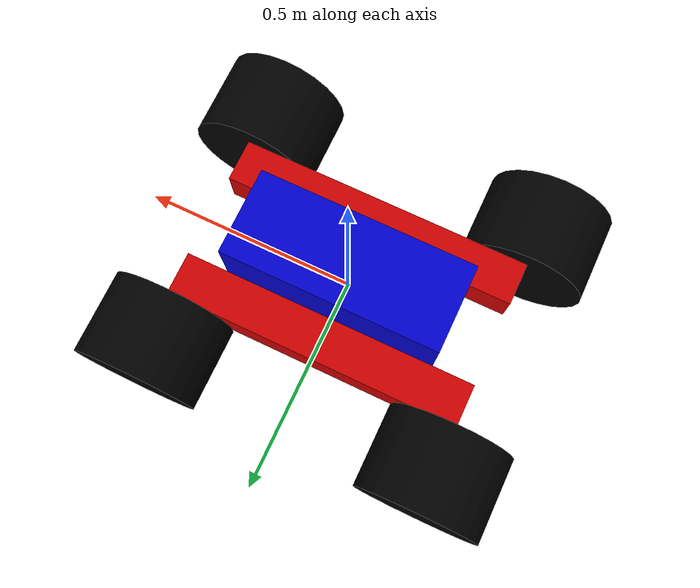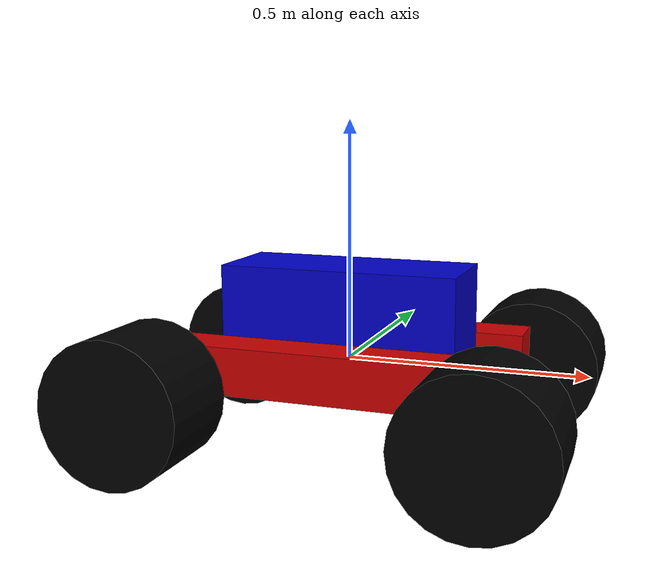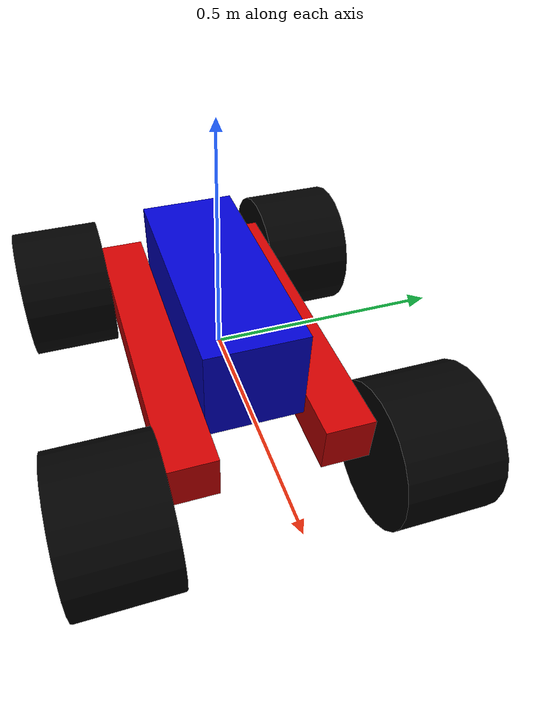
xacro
<?xml version="1.0"?>
<robot name="test"
   xmlns:xacro="http://www.ros.org/wiki/xacro">

   <xacro:include filename="$(find rover_config)/urdf/wheel.urdf.xacro" />

   <!-- Defining the colors used in this robot -->

   <material name="Black">
      <color rgba="0.0 0.0 0.0 1.0"/>
   </material>

   <material name="Red">
      <color rgba="0.8 0.0 0.0 1.0"/>
   </material>

   <material name="White">
      <color rgba="1.0 1.0 1.0 1.0"/>
   </material>

   <material name="Blue">
      <color rgba="0.0 0.0 0.8 1.0"/>
   </material>

   <!-- Property list -->
   <!-- All units in m-kg-s-radians unit system -->

   <xacro:property name="M_PI" value="3.1415926535897931" />
   <xacro:property name="M_PI_2" value="1.570796327" />
   <xacro:property name="DEG_TO_RAD" value="0.017453293" />

   <!-- Main body length height width -->

   <xacro:property name="base_height" value="0.2" />
   <!-- in meter -->
   <xacro:property name="base_width" value="0.2" />
   <!-- in meter -->
   <xacro:property name="base_lenght" value="0.5" />
   <!-- in meter -->
   <xacro:property name="base_mass" value="20.0" />
   <!-- in kg -->

   <xacro:property name="rocker_height" value="0.1" />
   <!-- in meter -->
   <xacro:property name="rocker_width" value="0.1" />
   <!-- in meter -->
   <xacro:property name="rocker_lenght" value="0.7" />
   <!-- in meter -->
   <xacro:property name="rocker_mass" value="2.0" />
   <!-- in kg -->

   <!-- Macro for calculating inertia of cylinder -->

   <xacro:macro name="cylinder_inertia" params="m r h">
      <inertia ixx="${ m * ( 3 * r*r + h*h ) / 12}" ixy="0" ixz="0" iyy="${ m * ( 3 * r*r + h*h ) / 12}" iyz="0" izz="${ m * r / 2}" />
   </xacro:macro>

   <!-- Macro for calculating inertia of a box -->

   <xacro:macro name="box_inertia" params="m x y z">
      <inertia ixx="${0.0833333 * m * (y*y + z*z)}" ixy="0.0" ixz="0.0" iyy="${0.0833333 * m * (x*x + z*z)}" iyz="0.0" izz="${0.0833333 * m * (x*x + y*y)}" />
   </xacro:macro>

   <!-- World link -->
   <!-- base_footprint is a fictious link(frame) that is on the ground right below base_link origin -->
   <!-- It is necessary as gazebo does not support inertia for the root link -->
   <!-- Do not call it world as it is reserved for robot that must be fixed to the world -->

   <link name="base_link">
   </link>

   <gazebo reference="base_link">
      <turnGravityOff>false</turnGravityOff>
   </gazebo>

   <joint name="glue_robot_to_world" type="fixed">
      <origin xyz="0 0 0.1" rpy="0 0 0" />
      <parent link="base_link" />
      <child link="chassis" />
   </joint>

   <!-- Base link -->
   <!-- Actual body/chassis of the robot -->

   <link name="chassis">
      <inertial>
         <mass value="${base_mass}" />
         <!-- the3x3 rotational inertia matrix -->
         <box_inertia m="${base_mass}" x="${base_lenght}" y="${base_width}" z="${base_height}" />
         <origin xyz="0 0 0" />
      </inertial>
      <visual>
         <origin xyz="0 0 0" rpy="0 0 0" />
         <geometry>
            <box size="${base_lenght} ${base_width} ${base_height}" />
         </geometry>
         <material name="Blue" />
      </visual>
      <collision>
         <origin xyz="0 0 0" rpy="0 0 0" />
         <geometry>
            <box size="${base_lenght} ${base_width} ${base_height}" />
         </geometry>
      </collision>
   </link>

   <gazebo reference="chassis">
      <material>Gazebo/White</material>
      <turnGravityOff>false</turnGravityOff>
   </gazebo>

   <xacro:macro name="rocker" params="side parent translateX translateY translateZ flipY">
      <link name="${side}_rocker">
         <visual>
            <origin xyz="0 ${flipY * rocker_width / 2} 0" rpy="0 0 0"/>
            <geometry>
               <box size="${rocker_lenght} ${rocker_width} ${rocker_height}" />
            </geometry>
            <material name="Red" />
         </visual>
         <collision>
            <origin xyz="0 ${flipY * rocker_width / 2} 0" rpy="0 0 0"/>
            <geometry>
               <box size="${rocker_lenght} ${rocker_width} ${rocker_height}" />
            </geometry>
         </collision>
         <inertial>
            <mass value="${rocker_mass}" />
            <origin xyz="0 0 0" />
            <box_inertia m="${rocker_mass}" x="${rocker_lenght}" y="${rocker_width}" z="${rocker_height}" />
         </inertial>
      </link>

      <joint name="${side}_rocker_joint" type="revolute">
         <origin xyz="${translateX} ${translateY} ${translateZ}" rpy="0.0 0.0 0.0"/>
         <parent link="${parent}"/>
         <child link="${side}_rocker"/>
         <axis xyz="0 1 0"/>
         <limit lower="${-30 * DEG_TO_RAD}" upper="${30 * DEG_TO_RAD}" effort="10000.0" velocity="100000.0"/>
         <mimic joint="right_rocker_joint" />
      </joint>

      <wheel fb="front" lr="${side}" parent="${side}_rocker" translateX="${rocker_lenght / 2}" translateY="${flipY * rocker_width}" translateZ="${-rocker_height / 2}" flipY="${flipY}" flipZ="1"/>
      <wheel fb="back" lr="${side}" parent="${side}_rocker" translateX="${-rocker_lenght / 2}" translateY="${flipY * rocker_width}" translateZ="${-rocker_height / 2}" flipY="${flipY}" flipZ="-1"/>
   </xacro:macro>

   <rocker side="left" parent="chassis" translateX="0" translateY="${base_width / 2}" translateZ="${-base_height / 2}" flipY="1" />
   <rocker side="right" parent="chassis" translateX="0" translateY="${-base_width / 2}" translateZ="${-base_height / 2}" flipY="-1" />

   <!-- Wheel Definition for simulation -->

   <!-- Skid Steering Drive for 4 wheel robot for simulation -->
   <gazebo>
      <plugin name="drive_controller" filename="libgazebo_ros_skid_steer_drive.so">
         <updateRate>100</updateRate>
         <robotNameSpace>/</robotNameSpace>
         <leftFrontJoint>front_left_wheel_joint</leftFrontJoint>
         <rightFrontJoint>front_right_wheel_joint</rightFrontJoint>
         <leftRearJoint>back_left_wheel_joint</leftRearJoint>
         <rightRearJoint>back_right_wheel_joint</rightRearJoint>
         <wheelSeparation>${rocker_lenght}</wheelSeparation>
         <wheelDiameter>0.32</wheelDiameter>
         <robotBaseFrame>base_link</robotBaseFrame>
         <torque>100</torque>
         <topicName>cmd_vel</topicName>
         <broadcastTF>true</broadcastTF>
         <commandTopic>cmd_vel</commandTopic>
         <odometryTopic>odom</odometryTopic>
         <odometryFrame>odom</odometryFrame>
         <covariance_x>0.00100</covariance_x>
         <covariance_y>0.00100</covariance_y>
         <covariance_yaw>0.010000</covariance_yaw>
      </plugin>
   </gazebo>

   <!-- Publishing joint states from Gazebo simulator -->
   <!-- fixed links are not published -->
   <!-- this is required to publish wheel status -->
   <gazebo>
      <plugin name="joint_state_publisher" filename="libgazebo_ros_joint_state_publisher.so">
         <jointName>
            front_left_wheel_joint,
            front_right_wheel_joint,
            back_left_wheel_joint,
            back_right_wheel_joint,
            left_rocker_joint,
            right_rocker_joint
         </jointName>
         <robotNameSpace>/</robotNameSpace>
         <updateRate>100</updateRate>
         <alwaysOn>true</alwaysOn>
      </plugin>
   </gazebo>

</robot>

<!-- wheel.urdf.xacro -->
<robot name="wheel" xmlns:xacro="http://www.ros.org/wiki/xacro">

<xacro:property name="wheel_radius" value="0.15" />
<xacro:property name="wheel_width"  value="0.2"  />
<xacro:property name="wheel_mass"   value="1"  />  <!-- in kg -->

   <!-- Macro for calculating inertia of cylindric wheel -->
   <xacro:macro name="wheel_inertia" params="m r h">
      <inertia ixx="${ m * ( 3 * r*r + h*h ) / 12}" ixy="0" ixz="0"
               iyy="${ m * ( 3 * r*r + h*h ) / 12}" iyz="0"
               izz="${ m * r / 2}" />
   </xacro:macro>

   <xacro:macro name="wheel" params="fb lr parent translateX translateY translateZ flipY flipZ">

   <!-- fb: front, back; lr: left right -->
      <link name="${fb}_${lr}_wheel">
         <visual>
            <origin xyz="0 ${flipY * wheel_width / 2} 0" rpy="${flipY*M_PI/2} 0 0"/>  <!-- make sure the wheel is in the correct position -->
            <geometry>
               <cylinder length="${wheel_width}" radius="${wheel_radius}" />
            </geometry>
            <material name="Black" />
         </visual>
         <collision>
            <origin xyz="0 ${flipY * wheel_width / 2} 0" rpy="${flipY*M_PI/2} 0 0"/>
            <geometry>
               <cylinder length="${wheel_width}" radius="${wheel_radius}" />
            </geometry>
         </collision>
         <inertial>
            <mass value="${wheel_mass}" />
            <origin xyz="0 ${flipY * wheel_width / 2} 0" rpy="${flipY*M_PI/2} 0 0"/>
            <wheel_inertia m="${wheel_mass}" r="${wheel_radius}" h="${wheel_width}" />
         </inertial>
      </link>

      <gazebo reference="${fb}_${lr}_wheel" >
         <mu1 value="1.0"/>
         <mu2 value="0.1" />
         <kp  value="10000000.0" />
         <kd  value="1.0" />
         <fdir1 value="1 ${flipY * flipZ} 0" />
         <slip1>0.5</slip1>
         <slip2>0</slip2>
         <material>Gazebo/Black</material>
         <turnGravityOff>false</turnGravityOff>
      </gazebo>

      <joint name="${fb}_${lr}_wheel_joint" type="continuous">
         <parent link="${parent}"/>
         <child link="${fb}_${lr}_wheel" />
         <origin xyz="${translateX} ${translateY} ${translateZ}" rpy="0 0 0" />
         <limit effort="1000" velocity="1000" />
         <axis xyz="0 1 0" />
         <joint_properties damping="0.0" friction="0.0" />
         <type>transmission_interface/SimpleTransmission</type>
      </joint>

      <!-- Transmission is important to link the joint and the controller -->

      <transmission name="${fb}_${lr}_wheel_joint_trans" >
         <type>transmission_interface/SimpleTransmission</type>
         <joint name="${fb}_${lr}_wheel_joint">
            <hardwareInterface>hardware_interface/EffortJointInterface</hardwareInterface>
         </joint>
         <actuator name="${fb}_${lr}_wheel_joint_motor">
            <hardwareInterface>hardware_interface/EffortJointInterface</hardwareInterface>
            <mechanicalReduction>1</mechanicalReduction> <!-- It is not true: we uses motor with gearbox and ration of 75 -->
         </actuator>
      </transmission>

   </xacro:macro>

</robot>
